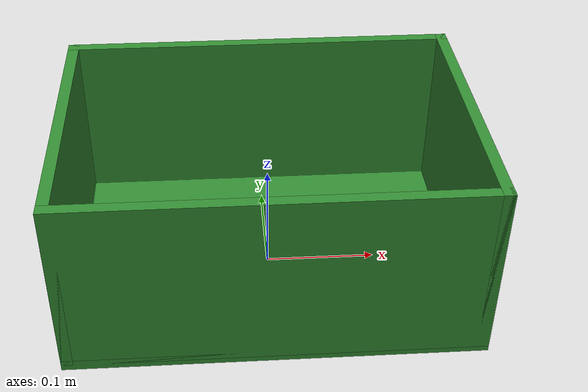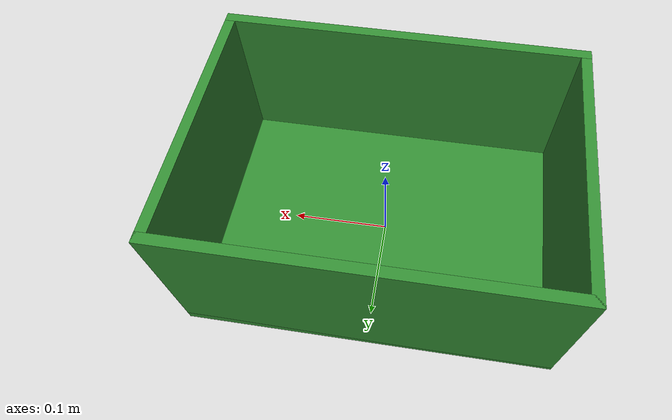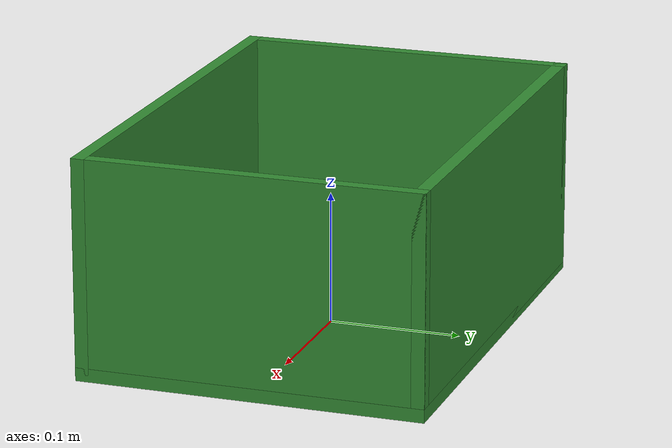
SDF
<?xml version='1.0'?>
<sdf version='1.6'>
  <model name='grasp_basket'>
    <static>true</static>
    <allow_auto_disable>false</allow_auto_disable>

    <link name='basket_link'>
      <self_collide>false</self_collide>
      <kinematic>false</kinematic>
      <gravity>true</gravity>

      <!-- Bottom plate -->
      <collision name='base_collision'>
        <pose>0 0 0.005 0 0 0</pose>
        <geometry>
          <box>
            <size>0.36 0.26 0.01</size>
          </box>
        </geometry>
        <surface>
          <friction>
            <ode>
              <mu>100</mu>
              <mu2>100</mu2>
              <slip1>0</slip1>
              <slip2>0</slip2>
            </ode>
          </friction>
          <contact>
            <ode>
              <kp>2e6</kp>
              <kd>5</kd>
              <min_depth>0.001</min_depth>
              <max_vel>0.05</max_vel>
            </ode>
          </contact>
        </surface>
      </collision>
      <visual name='base_visual'>
        <pose>0 0 0.005 0 0 0</pose>
        <geometry>
          <box>
            <size>0.36 0.26 0.01</size>
          </box>
        </geometry>
        <material>
          <ambient>0.15 0.35 0.15 1</ambient>
          <diffuse>0.20 0.55 0.20 1</diffuse>
          <specular>0.05 0.05 0.05 1</specular>
        </material>
      </visual>

      <!-- Front wall -->
      <collision name='front_wall_collision'>
        <pose>0 0.125 0.085 0 0 0</pose>
        <geometry>
          <box>
            <size>0.36 0.01 0.16</size>
          </box>
        </geometry>
        <surface>
          <friction>
            <ode>
              <mu>100</mu>
              <mu2>100</mu2>
            </ode>
          </friction>
          <contact>
            <ode>
              <kp>2e6</kp>
              <kd>5</kd>
              <min_depth>0.001</min_depth>
              <max_vel>0.05</max_vel>
            </ode>
          </contact>
        </surface>
      </collision>
      <visual name='front_wall_visual'>
        <pose>0 0.125 0.085 0 0 0</pose>
        <geometry>
          <box>
            <size>0.36 0.01 0.16</size>
          </box>
        </geometry>
        <material>
          <ambient>0.15 0.35 0.15 1</ambient>
          <diffuse>0.20 0.55 0.20 1</diffuse>
          <specular>0.05 0.05 0.05 1</specular>
        </material>
      </visual>

      <!-- Back wall -->
      <collision name='back_wall_collision'>
        <pose>0 -0.125 0.085 0 0 0</pose>
        <geometry>
          <box>
            <size>0.36 0.01 0.16</size>
          </box>
        </geometry>
        <surface>
          <friction>
            <ode>
              <mu>100</mu>
              <mu2>100</mu2>
            </ode>
          </friction>
          <contact>
            <ode>
              <kp>2e6</kp>
              <kd>5</kd>
              <min_depth>0.001</min_depth>
              <max_vel>0.05</max_vel>
            </ode>
          </contact>
        </surface>
      </collision>
      <visual name='back_wall_visual'>
        <pose>0 -0.125 0.085 0 0 0</pose>
        <geometry>
          <box>
            <size>0.36 0.01 0.16</size>
          </box>
        </geometry>
        <material>
          <ambient>0.15 0.35 0.15 1</ambient>
          <diffuse>0.20 0.55 0.20 1</diffuse>
          <specular>0.05 0.05 0.05 1</specular>
        </material>
      </visual>

      <!-- Left wall -->
      <collision name='left_wall_collision'>
        <pose>0.175 0 0.085 0 0 0</pose>
        <geometry>
          <box>
            <size>0.01 0.26 0.16</size>
          </box>
        </geometry>
        <surface>
          <friction>
            <ode>
              <mu>100</mu>
              <mu2>100</mu2>
            </ode>
          </friction>
          <contact>
            <ode>
              <kp>2e6</kp>
              <kd>5</kd>
              <min_depth>0.001</min_depth>
              <max_vel>0.05</max_vel>
            </ode>
          </contact>
        </surface>
      </collision>
      <visual name='left_wall_visual'>
        <pose>0.175 0 0.085 0 0 0</pose>
        <geometry>
          <box>
            <size>0.01 0.26 0.16</size>
          </box>
        </geometry>
        <material>
          <ambient>0.15 0.35 0.15 1</ambient>
          <diffuse>0.20 0.55 0.20 1</diffuse>
          <specular>0.05 0.05 0.05 1</specular>
        </material>
      </visual>

      <!-- Right wall -->
      <collision name='right_wall_collision'>
        <pose>-0.175 0 0.085 0 0 0</pose>
        <geometry>
          <box>
            <size>0.01 0.26 0.16</size>
          </box>
        </geometry>
        <surface>
          <friction>
            <ode>
              <mu>100</mu>
              <mu2>100</mu2>
            </ode>
          </friction>
          <contact>
            <ode>
              <kp>2e6</kp>
              <kd>5</kd>
              <min_depth>0.001</min_depth>
              <max_vel>0.05</max_vel>
            </ode>
          </contact>
        </surface>
      </collision>
      <visual name='right_wall_visual'>
        <pose>-0.175 0 0.085 0 0 0</pose>
        <geometry>
          <box>
            <size>0.01 0.26 0.16</size>
          </box>
        </geometry>
        <material>
          <ambient>0.15 0.35 0.15 1</ambient>
          <diffuse>0.20 0.55 0.20 1</diffuse>
          <specular>0.05 0.05 0.05 1</specular>
        </material>
      </visual>
    </link>
  </model>
</sdf>
